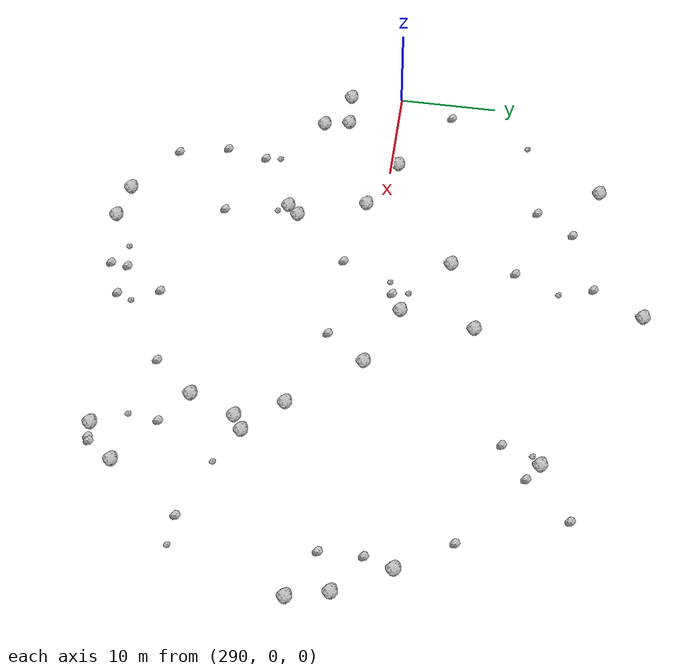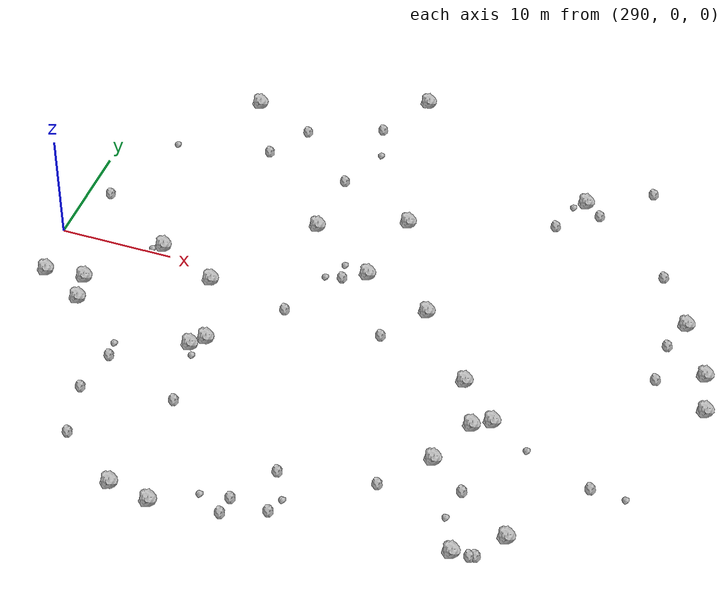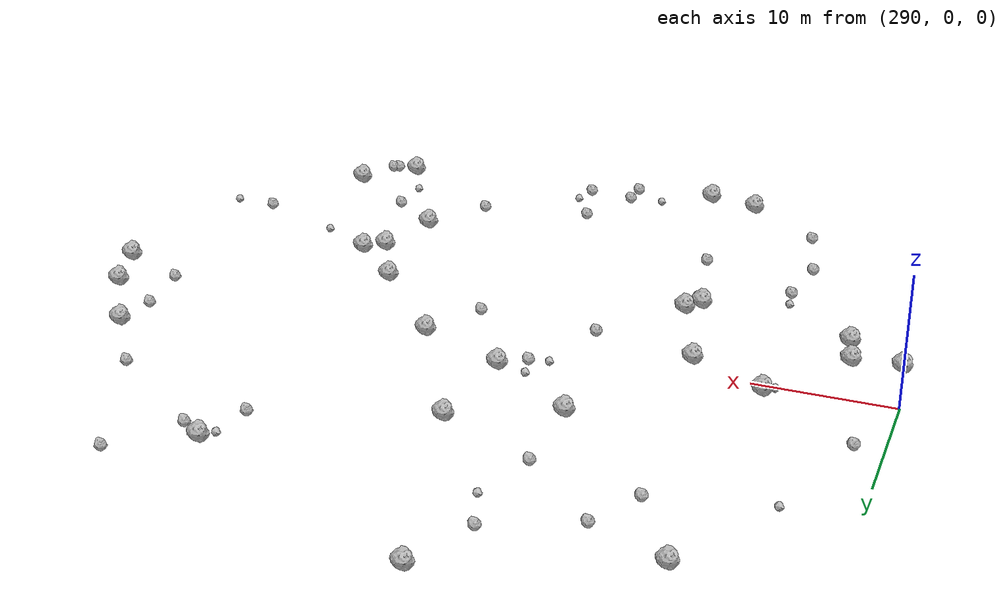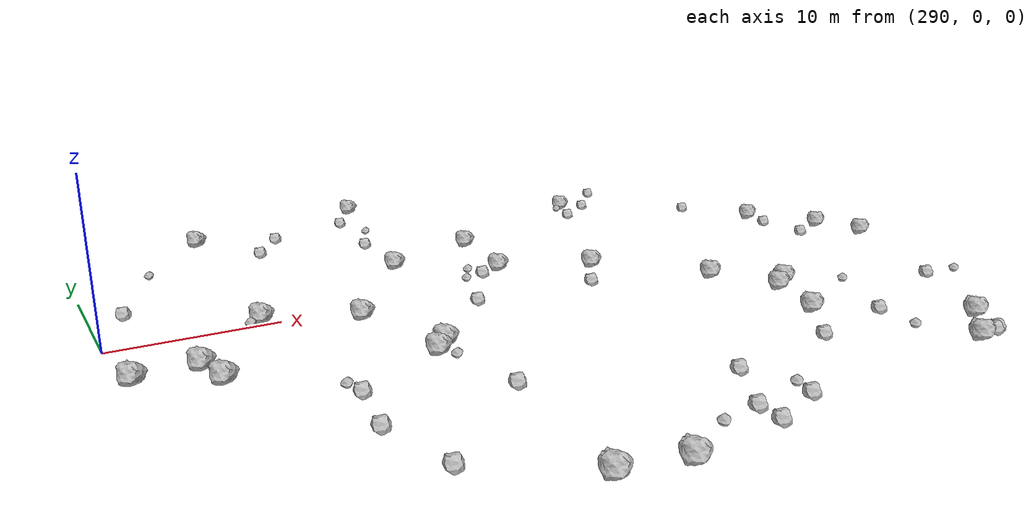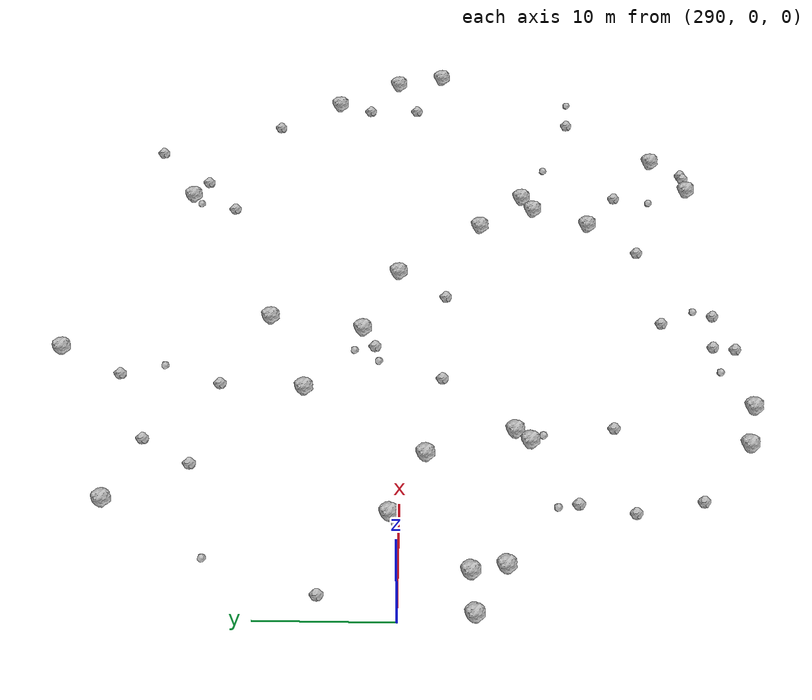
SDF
<sdf version="1.6">
 <world name="default">
  <include><uri>model://sun</uri></include>
  <model name="rock1_8_2">
   <include><uri>model://rock1</uri><pose>294.75111456608204 -7.6474412872991735 0.5 0 0 0</pose></include>
  </model>
  <model name="rock1_8_3">
   <include><uri>model://rock1</uri><pose>336.9711132227251 -21.227514636130977 0.5 0 0 0</pose></include>
  </model>
  <model name="rock1_8_4">
   <include><uri>model://rock1</uri><pose>329.03538196706415 -15.297932638100121 0.5 0 0 0</pose></include>
  </model>
  <model name="rock1_8_5">
   <include><uri>model://rock1</uri><pose>305.86748392262473 -9.701257525476894 0.5 0 0 0</pose></include>
  </model>
  <model name="rock1_8_6">
   <include><uri>model://rock1</uri><pose>306.85011050307577 -8.591208083644016 0.5 0 0 0</pose></include>
  </model>
  <model name="rock1_8_7">
   <include><uri>model://rock1</uri><pose>310.78376039606655 7.609908695680382 0.5 0 0 0</pose></include>
  </model>
  <model name="rock1_8_8">
   <include><uri>model://rock1</uri><pose>299.9771127594907 21.735992941847805 0.5 0 0 0</pose></include>
  </model>
  <model name="rock1_8_9">
   <include><uri>model://rock1</uri><pose>347.180565419437 0.9228888395745933 0.5 0 0 0</pose></include>
  </model>
  <model name="rock1_8_10">
   <include><uri>model://rock1</uri><pose>294.22421240227686 -5.0971834417304045 0.5 0 0 0</pose></include>
  </model>
  <model name="rock1_8_11">
   <include><uri>model://rock1</uri><pose>328.7395144793264 -6.234918608165028 0.5 0 0 0</pose></include>
  </model>
  <model name="rock1_8_12">
   <include><uri>model://rock1</uri><pose>333.40104098460995 -24.034641490332717 0.5 0 0 0</pose></include>
  </model>
  <model name="rock1_8_13">
   <include><uri>model://rock1</uri><pose>332.2411188945031 -9.82905448559703 0.5 0 0 0</pose></include>
  </model>
  <model name="rock1_8_14">
   <include><uri>model://rock1</uri><pose>314.5881722783718 26.926452331307203 0.5 0 0 0</pose></include>
  </model>
  <model name="rock1_8_15">
   <include><uri>model://rock1</uri><pose>309.41448121582135 -26.883141788350798 0.5 0 0 0</pose></include>
  </model>
  <model name="rock1_8_16">
   <include><uri>model://rock1</uri><pose>305.7855279720108 -26.140963288913667 0.5 0 0 0</pose></include>
  </model>
  <model name="rock1_8_17">
   <include><uri>model://rock1</uri><pose>348.15856854576066 -3.0009621786036007 0.5 0 0 0</pose></include>
  </model>
  <model name="rock1_8_18">
   <include><uri>model://rock1</uri><pose>290.73636217538 -5.342958454176948 0.5 0 0 0</pose></include>
  </model>
  <model name="rock1_8_19">
   <include><uri>model://rock1</uri><pose>332.1089626247729 18.29302428588837 0.5 0 0 0</pose></include>
  </model>
  <model name="rock1_8_20">
   <include><uri>model://rock1</uri><pose>318.1212949138659 10.689024848235086 0.5 0 0 0</pose></include>
  </model>
  <model name="rock1_8_21">
   <include><uri>model://rock1</uri><pose>323.2353126401138 0.5078246331128398 0.5 0 0 0</pose></include>
  </model>
  <model name="rock1_8_22">
   <include><uri>model://rock1</uri><pose>304.543160711473 -1.8299677907617884 0.5 0 0 0</pose></include>
  </model>
  <model name="rock1_8_23">
   <include><uri>model://rock1</uri><pose>344.25114683031245 6.187077725984977 0.5 0 0 0</pose></include>
  </model>
  <model name="rock1_8_24">
   <include><uri>model://rock1</uri><pose>299.09693305213756 0.7688795638624342 0.5 0 0 0</pose></include>
  </model>
  <model name="rock1_8_25">
   <include><uri>model://rock1</uri><pose>330.7939273707798 -10.755633070154946 0.5 0 0 0</pose></include>
  </model>
  <model name="rock1_8_26">
   <include><uri>model://rock1</uri><pose>316.96482411233796 3.2622376951031455 0.5 0 0 0</pose></include>
  </model>
  <model name="rock2_8_0">
   <include><uri>model://rock2</uri><pose>315.1591155175638 -26.133974952236862 0.3 0 0 0</pose></include>
  </model>
  <model name="rock2_8_1">
   <include><uri>model://rock2</uri><pose>307.0719950465826 -16.047652197485622 0.3 0 0 0</pose></include>
  </model>
  <model name="rock2_8_2">
   <include><uri>model://rock2</uri><pose>303.2478613317244 15.676697564324812 0.3 0 0 0</pose></include>
  </model>
  <model name="rock2_8_3">
   <include><uri>model://rock2</uri><pose>318.65482106670134 -24.725026241527885 0.3 0 0 0</pose></include>
  </model>
  <model name="rock2_8_4">
   <include><uri>model://rock2</uri><pose>315.03221831014713 2.2239709812107904 0.3 0 0 0</pose></include>
  </model>
  <model name="rock2_8_5">
   <include><uri>model://rock2</uri><pose>300.385086625344 -22.140535862559684 0.3 0 0 0</pose></include>
  </model>
  <model name="rock2_8_6">
   <include><uri>model://rock2</uri><pose>343.41699783692394 -0.7640653390493739 0.3 0 0 0</pose></include>
  </model>
  <model name="rock2_8_7">
   <include><uri>model://rock2</uri><pose>337.39389475238096 21.494931024138374 0.3 0 0 0</pose></include>
  </model>
  <model name="rock2_8_8">
   <include><uri>model://rock2</uri><pose>292.0163641372459 5.64675074388645 0.3 0 0 0</pose></include>
  </model>
  <model name="rock2_8_9">
   <include><uri>model://rock2</uri><pose>343.3358384977609 3.3947551599299217 0.3 0 0 0</pose></include>
  </model>
  <model name="rock2_8_10">
   <include><uri>model://rock2</uri><pose>317.81913158575475 -20.557089908551802 0.3 0 0 0</pose></include>
  </model>
  <model name="rock2_8_11">
   <include><uri>model://rock2</uri><pose>340.9600224094582 11.366087272949692 0.3 0 0 0</pose></include>
  </model>
  <model name="rock2_8_12">
   <include><uri>model://rock2</uri><pose>315.3529972834053 -24.419078269867477 0.3 0 0 0</pose></include>
  </model>
  <model name="rock2_8_13">
   <include><uri>model://rock2</uri><pose>330.41019108256245 14.581492408295176 0.3 0 0 0</pose></include>
  </model>
  <model name="rock2_8_14">
   <include><uri>model://rock2</uri><pose>311.88901080175947 21.950200862419884 0.3 0 0 0</pose></include>
  </model>
  <model name="rock2_8_15">
   <include><uri>model://rock2</uri><pose>320.45575309294003 -3.3644091727961403 0.3 0 0 0</pose></include>
  </model>
  <model name="rock2_8_16">
   <include><uri>model://rock2</uri><pose>335.243710839775 -23.73960875587634 0.3 0 0 0</pose></include>
  </model>
  <model name="rock2_8_17">
   <include><uri>model://rock2</uri><pose>332.237161672762 -17.743710385760842 0.3 0 0 0</pose></include>
  </model>
  <model name="rock2_8_18">
   <include><uri>model://rock2</uri><pose>334.82215581930626 -23.897963587809922 0.3 0 0 0</pose></include>
  </model>
  <model name="rock2_8_19">
   <include><uri>model://rock2</uri><pose>333.67458493607114 17.13204114838002 0.3 0 0 0</pose></include>
  </model>
  <model name="rock2_8_20">
   <include><uri>model://rock2</uri><pose>299.28263976846006 -17.13033619060966 0.3 0 0 0</pose></include>
  </model>
  <model name="rock2_8_21">
   <include><uri>model://rock2</uri><pose>311.01905977180326 14.106297026989964 0.3 0 0 0</pose></include>
  </model>
  <model name="rock2_8_22">
   <include><uri>model://rock2</uri><pose>305.5365991532915 19.434632966647605 0.3 0 0 0</pose></include>
  </model>
  <model name="rock2_8_23">
   <include><uri>model://rock2</uri><pose>311.8007662112468 -3.087346568390707 0.3 0 0 0</pose></include>
  </model>
  <model name="rock2_8_24">
   <include><uri>model://rock2</uri><pose>325.7112020617391 -19.19531351423759 0.3 0 0 0</pose></include>
  </model>
  <model name="rock2_8_25">
   <include><uri>model://rock2</uri><pose>300.0284641632668 -13.026774501110683 0.3 0 0 0</pose></include>
  </model>
  <model name="rock2_8_26">
   <include><uri>model://rock2</uri><pose>341.66677068775846 -14.147550609536951 0.3 0 0 0</pose></include>
  </model>
  <model name="rock3_8_0">
   <include><uri>model://rock3</uri><pose>312.8535675923961 18.547421330487325 0.2 0 0 0</pose></include>
  </model>
  <model name="rock3_8_1">
   <include><uri>model://rock3</uri><pose>299.792768335631 -11.540612476719875 0.2 0 0 0</pose></include>
  </model>
  <model name="rock3_8_2">
   <include><uri>model://rock3</uri><pose>313.59734313081947 1.8606198750225538 0.2 0 0 0</pose></include>
  </model>
  <model name="rock3_8_3">
   <include><uri>model://rock3</uri><pose>306.40829269783734 -10.733240342555202 0.2 0 0 0</pose></include>
  </model>
  <model name="rock3_8_4">
   <include><uri>model://rock3</uri><pose>331.83866424403783 -20.74342767399228 0.2 0 0 0</pose></include>
  </model>
  <model name="rock3_8_5">
   <include><uri>model://rock3</uri><pose>294.9782581307815 13.919738103368218 0.2 0 0 0</pose></include>
  </model>
  <model name="rock3_8_6">
   <include><uri>model://rock3</uri><pose>335.7418223291156 -11.87185115255945 0.2 0 0 0</pose></include>
  </model>
  <model name="rock3_8_7">
   <include><uri>model://rock3</uri><pose>344.5777951055828 -14.354635373214432 0.2 0 0 0</pose></include>
  </model>
  <model name="rock3_8_8">
   <include><uri>model://rock3</uri><pose>319.22041602992107 -23.251647959198927 0.2 0 0 0</pose></include>
  </model>
  <model name="rock3_8_9">
   <include><uri>model://rock3</uri><pose>312.87913350889437 -24.800948686634392 0.2 0 0 0</pose></include>
  </model>
  <model name="rock3_8_10">
   <include><uri>model://rock3</uri><pose>298.2511989996999 0.27707621375459013 0.2 0 0 0</pose></include>
  </model>
  <model name="rock3_8_11">
   <include><uri>model://rock3</uri><pose>331.14513212053527 17.515399038709823 0.2 0 0 0</pose></include>
  </model>
  <model name="rock3_8_12">
   <include><uri>model://rock3</uri><pose>314.69602747750247 3.802829398816428 0.2 0 0 0</pose></include>
  </model>
 </world>
</sdf>
